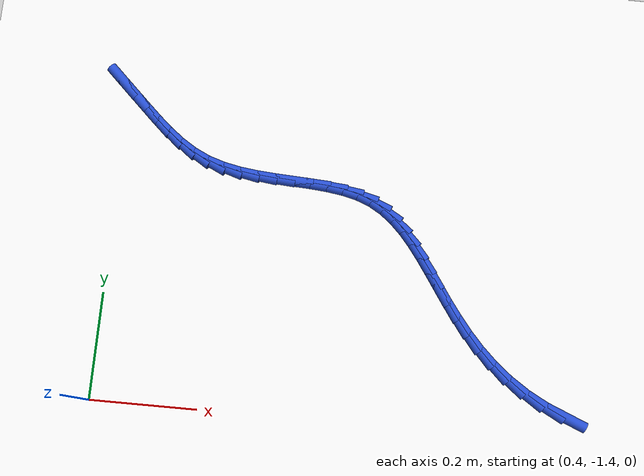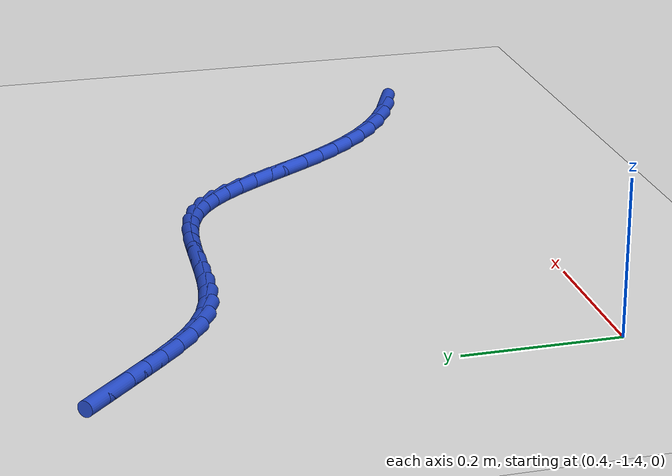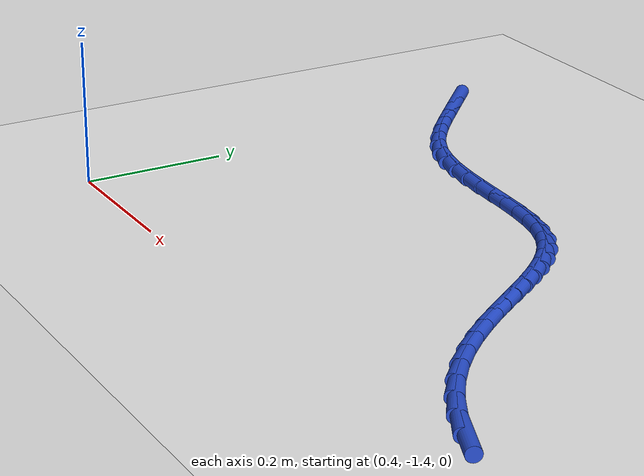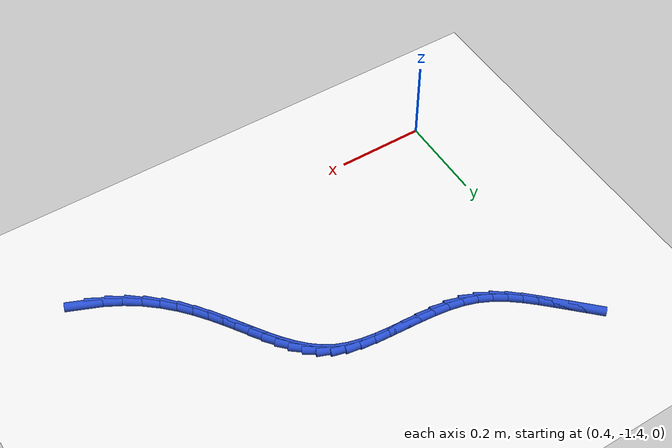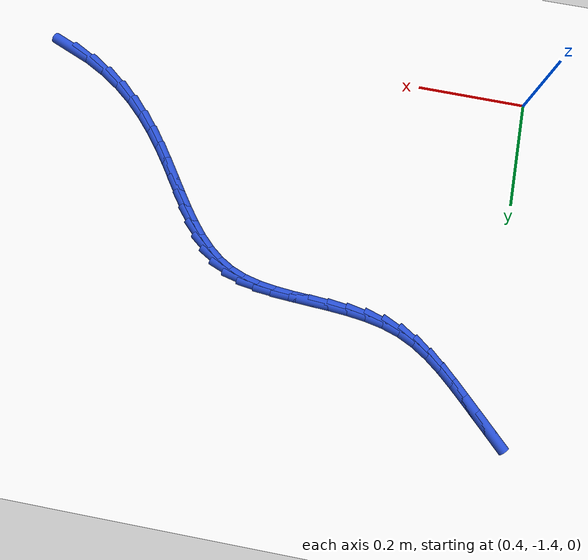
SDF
<sdf version="1.6">
 <world name="default">
  <model name="ground_plane">
   <static>1</static>
   <link name="link">
    <collision name="collision">
     <geometry><plane><normal>0 0 1</normal><size>100 100</size></plane></geometry>
     <surface><friction><ode><mu>100</mu><mu2>50</mu2></ode></friction></surface>
    </collision>
    <visual name="visual">
     <cast_shadows>0</cast_shadows>
     <geometry><plane><normal>0 0 1</normal><size>100 100</size></plane></geometry>
     <material>
      <script><uri>file://media/materials/scripts/gazebo.material</uri><name>Gazebo/WhiteGlow</name></script>
     </material>
    </visual>
   </link>
  </model>
  <model name="line">
   <link name="link_209">
    <pose>1.2712890341023373 -1.3537588794296445 0.01 0 1.57 -0.3932821039476842</pose>
    <collision name="collision">
     <geometry><cylinder><radius>0.01</radius><length>0.08</length></cylinder></geometry>
    </collision>
    <visual name="visual">
     <material>
      <script><name>Gazebo/Blue</name><uri>file://media/materials/scripts/gazebo.material</uri></script>
     </material>
     <geometry><cylinder><radius>0.01</radius><length>0.08</length></cylinder></geometry>
    </visual>
   </link>
   <link name="link_210">
    <pose>1.233628765594586 -1.338133755273114 0.01 0 1.57 -0.49834361054359916</pose>
    <collision name="collision">
     <geometry><cylinder><radius>0.01</radius><length>0.08</length></cylinder></geometry>
    </collision>
    <visual name="visual">
     <material>
      <script><name>Gazebo/Blue</name><uri>file://media/materials/scripts/gazebo.material</uri></script>
     </material>
     <geometry><cylinder><radius>0.01</radius><length>0.08</length></cylinder></geometry>
    </visual>
   </link>
   <link name="link_211">
    <pose>1.1966560040364618 -1.3180148902959616 0.01 0 1.57 -0.5964309809882797</pose>
    <collision name="collision">
     <geometry><cylinder><radius>0.01</radius><length>0.08</length></cylinder></geometry>
    </collision>
    <visual name="visual">
     <material>
      <script><name>Gazebo/Blue</name><uri>file://media/materials/scripts/gazebo.material</uri></script>
     </material>
     <geometry><cylinder><radius>0.01</radius><length>0.08</length></cylinder></geometry>
    </visual>
   </link>
   <link name="link_212">
    <pose>1.1631758418189233 -1.2952848708786582 0.01 0 1.57 -0.6905259404128921</pose>
    <collision name="collision">
     <geometry><cylinder><radius>0.01</radius><length>0.08</length></cylinder></geometry>
    </collision>
    <visual name="visual">
     <material>
      <script><name>Gazebo/Blue</name><uri>file://media/materials/scripts/gazebo.material</uri></script>
     </material>
     <geometry><cylinder><radius>0.01</radius><length>0.08</length></cylinder></geometry>
    </visual>
   </link>
   <link name="link_213">
    <pose>1.1333903971800678 -1.2706755202670923 0.01 0 1.57 -0.7755477362374128</pose>
    <collision name="collision">
     <geometry><cylinder><radius>0.01</radius><length>0.08</length></cylinder></geometry>
    </collision>
    <visual name="visual">
     <material>
      <script><name>Gazebo/Blue</name><uri>file://media/materials/scripts/gazebo.material</uri></script>
     </material>
     <geometry><cylinder><radius>0.01</radius><length>0.08</length></cylinder></geometry>
    </visual>
   </link>
   <link name="link_214">
    <pose>1.1068083968851032 -1.244612116463913 0.01 0 1.57 -0.8485444519125177</pose>
    <collision name="collision">
     <geometry><cylinder><radius>0.01</radius><length>0.08</length></cylinder></geometry>
    </collision>
    <visual name="visual">
     <material>
      <script><name>Gazebo/Blue</name><uri>file://media/materials/scripts/gazebo.material</uri></script>
     </material>
     <geometry><cylinder><radius>0.01</radius><length>0.08</length></cylinder></geometry>
    </visual>
   </link>
   <link name="link_215">
    <pose>1.0829385615203637 -1.2175199347401167 0.01 0 1.57 -0.9073311347463928</pose>
    <collision name="collision">
     <geometry><cylinder><radius>0.01</radius><length>0.08</length></cylinder></geometry>
    </collision>
    <visual name="visual">
     <material>
      <script><name>Gazebo/Blue</name><uri>file://media/materials/scripts/gazebo.material</uri></script>
     </material>
     <geometry><cylinder><radius>0.01</radius><length>0.08</length></cylinder></geometry>
    </visual>
   </link>
   <link name="link_216">
    <pose>1.0612896116721846 -1.1898242503666994 0.01 0 1.57 -0.9503234125625897</pose>
    <collision name="collision">
     <geometry><cylinder><radius>0.01</radius><length>0.08</length></cylinder></geometry>
    </collision>
    <visual name="visual">
     <material>
      <script><name>Gazebo/Blue</name><uri>file://media/materials/scripts/gazebo.material</uri></script>
     </material>
     <geometry><cylinder><radius>0.01</radius><length>0.08</length></cylinder></geometry>
    </visual>
   </link>
   <link name="link_217">
    <pose>1.0413702679269028 -1.1619503386146606 0.01 0 1.57 -0.9762293946090665</pose>
    <collision name="collision">
     <geometry><cylinder><radius>0.01</radius><length>0.08</length></cylinder></geometry>
    </collision>
    <visual name="visual">
     <material>
      <script><name>Gazebo/Blue</name><uri>file://media/materials/scripts/gazebo.material</uri></script>
     </material>
     <geometry><cylinder><radius>0.01</radius><length>0.08</length></cylinder></geometry>
    </visual>
   </link>
   <link name="link_218">
    <pose>1.0226892508708525 -1.1343234747549953 0.01 0 1.57 -0.9837118298803118</pose>
    <collision name="collision">
     <geometry><cylinder><radius>0.01</radius><length>0.08</length></cylinder></geometry>
    </collision>
    <visual name="visual">
     <material>
      <script><name>Gazebo/Blue</name><uri>file://media/materials/scripts/gazebo.material</uri></script>
     </material>
     <geometry><cylinder><radius>0.01</radius><length>0.08</length></cylinder></geometry>
    </visual>
   </link>
   <link name="link_219">
    <pose>1.0047552810903715 -1.107368934058703 0.01 0 1.57 -0.9710989264022156</pose>
    <collision name="collision">
     <geometry><cylinder><radius>0.01</radius><length>0.08</length></cylinder></geometry>
    </collision>
    <visual name="visual">
     <material>
      <script><name>Gazebo/Blue</name><uri>file://media/materials/scripts/gazebo.material</uri></script>
     </material>
     <geometry><cylinder><radius>0.01</radius><length>0.08</length></cylinder></geometry>
    </visual>
   </link>
   <link name="link_220">
    <pose>0.9870770791717933 -1.0815119917967788 0.01 0 1.57 -0.9362132688719885</pose>
    <collision name="collision">
     <geometry><cylinder><radius>0.01</radius><length>0.08</length></cylinder></geometry>
    </collision>
    <visual name="visual">
     <material>
      <script><name>Gazebo/Blue</name><uri>file://media/materials/scripts/gazebo.material</uri></script>
     </material>
     <geometry><cylinder><radius>0.01</radius><length>0.08</length></cylinder></geometry>
    </visual>
   </link>
   <link name="link_221">
    <pose>0.9691633657014552 -1.057177923240222 0.01 0 1.57 -0.8764385535347579</pose>
    <collision name="collision">
     <geometry><cylinder><radius>0.01</radius><length>0.08</length></cylinder></geometry>
    </collision>
    <visual name="visual">
     <material>
      <script><name>Gazebo/Blue</name><uri>file://media/materials/scripts/gazebo.material</uri></script>
     </material>
     <geometry><cylinder><radius>0.01</radius><length>0.08</length></cylinder></geometry>
    </visual>
   </link>
   <link name="link_222">
    <pose>0.9505228612656922 -1.0347920036600284 0.01 0 1.57 -0.7892586003705578</pose>
    <collision name="collision">
     <geometry><cylinder><radius>0.01</radius><length>0.08</length></cylinder></geometry>
    </collision>
    <visual name="visual">
     <material>
      <script><name>Gazebo/Blue</name><uri>file://media/materials/scripts/gazebo.material</uri></script>
     </material>
     <geometry><cylinder><radius>0.01</radius><length>0.08</length></cylinder></geometry>
    </visual>
   </link>
   <link name="link_223">
    <pose>0.9306642864508405 -1.014779508327196 0.01 0 1.57 -0.6735936574031657</pose>
    <collision name="collision">
     <geometry><cylinder><radius>0.01</radius><length>0.08</length></cylinder></geometry>
    </collision>
    <visual name="visual">
     <material>
      <script><name>Gazebo/Blue</name><uri>file://media/materials/scripts/gazebo.material</uri></script>
     </material>
     <geometry><cylinder><radius>0.01</radius><length>0.08</length></cylinder></geometry>
    </visual>
   </link>
   <link name="link_224">
    <pose>0.9090963618432351 -0.9975657125127213 0.01 0 1.57 -0.531984046560885</pose>
    <collision name="collision">
     <geometry><cylinder><radius>0.01</radius><length>0.08</length></cylinder></geometry>
    </collision>
    <visual name="visual">
     <material>
      <script><name>Gazebo/Blue</name><uri>file://media/materials/scripts/gazebo.material</uri></script>
     </material>
     <geometry><cylinder><radius>0.01</radius><length>0.08</length></cylinder></geometry>
    </visual>
   </link>
   <link name="link_225">
    <pose>0.8853278080292126 -0.9835758914876026 0.01 0 1.57 -0.3743671392875668</pose>
    <collision name="collision">
     <geometry><cylinder><radius>0.01</radius><length>0.08</length></cylinder></geometry>
    </collision>
    <visual name="visual">
     <material>
      <script><name>Gazebo/Blue</name><uri>file://media/materials/scripts/gazebo.material</uri></script>
     </material>
     <geometry><cylinder><radius>0.01</radius><length>0.08</length></cylinder></geometry>
    </visual>
   </link>
   <link name="link_226">
    <pose>0.858901594300887 -0.9731931420330416 0.01 0 1.57 -0.2386428527274128</pose>
    <collision name="collision">
     <geometry><cylinder><radius>0.01</radius><length>0.08</length></cylinder></geometry>
    </collision>
    <visual name="visual">
     <material>
      <script><name>Gazebo/Blue</name><uri>file://media/materials/scripts/gazebo.material</uri></script>
     </material>
     <geometry><cylinder><radius>0.01</radius><length>0.08</length></cylinder></geometry>
    </visual>
   </link>
   <link name="link_227">
    <pose>0.8298991262425047 -0.9661374576351933 0.01 0 1.57 -0.14497136874915995</pose>
    <collision name="collision">
     <geometry><cylinder><radius>0.01</radius><length>0.08</length></cylinder></geometry>
    </collision>
    <visual name="visual">
     <material>
      <script><name>Gazebo/Blue</name><uri>file://media/materials/scripts/gazebo.material</uri></script>
     </material>
     <geometry><cylinder><radius>0.01</radius><length>0.08</length></cylinder></geometry>
    </visual>
   </link>
   <link name="link_228">
    <pose>0.7988299983020699 -0.9616015020838168 0.01 0 1.57 -0.0868024873980235</pose>
    <collision name="collision">
     <geometry><cylinder><radius>0.01</radius><length>0.08</length></cylinder></geometry>
    </collision>
    <visual name="visual">
     <material>
      <script><name>Gazebo/Blue</name><uri>file://media/materials/scripts/gazebo.material</uri></script>
     </material>
     <geometry><cylinder><radius>0.01</radius><length>0.08</length></cylinder></geometry>
    </visual>
   </link>
   <link name="link_229">
    <pose>0.7662156407077375 -0.9587633629877299 0.01 0 1.57 -0.05826757571302998</pose>
    <collision name="collision">
     <geometry><cylinder><radius>0.01</radius><length>0.08</length></cylinder></geometry>
    </collision>
    <visual name="visual">
     <material>
      <script><name>Gazebo/Blue</name><uri>file://media/materials/scripts/gazebo.material</uri></script>
     </material>
     <geometry><cylinder><radius>0.01</radius><length>0.08</length></cylinder></geometry>
    </visual>
   </link>
   <link name="link_230">
    <pose>0.7325774836876653 -0.9568011279557512 0.01 0 1.57 -0.055835691359183176</pose>
    <collision name="collision">
     <geometry><cylinder><radius>0.01</radius><length>0.08</length></cylinder></geometry>
    </collision>
    <visual name="visual">
     <material>
      <script><name>Gazebo/Blue</name><uri>file://media/materials/scripts/gazebo.material</uri></script>
     </material>
     <geometry><cylinder><radius>0.01</radius><length>0.08</length></cylinder></geometry>
    </visual>
   </link>
   <link name="link_231">
    <pose>0.6984369574700081 -0.9548928845966989 0.01 0 1.57 -0.07827028792766427</pose>
    <collision name="collision">
     <geometry><cylinder><radius>0.01</radius><length>0.08</length></cylinder></geometry>
    </collision>
    <visual name="visual">
     <material>
      <script><name>Gazebo/Blue</name><uri>file://media/materials/scripts/gazebo.material</uri></script>
     </material>
     <geometry><cylinder><radius>0.01</radius><length>0.08</length></cylinder></geometry>
    </visual>
   </link>
   <link name="link_232">
    <pose>0.6643154922829239 -0.9522167205193909 0.01 0 1.57 -0.12635930087333394</pose>
    <collision name="collision">
     <geometry><cylinder><radius>0.01</radius><length>0.08</length></cylinder></geometry>
    </collision>
    <visual name="visual">
     <material>
      <script><name>Gazebo/Blue</name><uri>file://media/materials/scripts/gazebo.material</uri></script>
     </material>
     <geometry><cylinder><radius>0.01</radius><length>0.08</length></cylinder></geometry>
    </visual>
   </link>
   <link name="link_233">
    <pose>0.630734518354567 -0.9479507233326451 0.01 0 1.57 -0.20253313831016825</pose>
    <collision name="collision">
     <geometry><cylinder><radius>0.01</radius><length>0.08</length></cylinder></geometry>
    </collision>
    <visual name="visual">
     <material>
      <script><name>Gazebo/Blue</name><uri>file://media/materials/scripts/gazebo.material</uri></script>
     </material>
     <geometry><cylinder><radius>0.01</radius><length>0.08</length></cylinder></geometry>
    </visual>
   </link>
   <link name="link_234">
    <pose>0.5982154659130958 -0.9412729806452803 0.01 0 1.57 -0.31005408136774865</pose>
    <collision name="collision">
     <geometry><cylinder><radius>0.01</radius><length>0.08</length></cylinder></geometry>
    </collision>
    <visual name="visual">
     <material>
      <script><name>Gazebo/Blue</name><uri>file://media/materials/scripts/gazebo.material</uri></script>
     </material>
     <geometry><cylinder><radius>0.01</radius><length>0.08</length></cylinder></geometry>
    </visual>
   </link>
   <link name="link_235">
    <pose>0.5672797651866655 -0.9313615800661144 0.01 0 1.57 -0.445323536437308</pose>
    <collision name="collision">
     <geometry><cylinder><radius>0.01</radius><length>0.08</length></cylinder></geometry>
    </collision>
    <visual name="visual">
     <material>
      <script><name>Gazebo/Blue</name><uri>file://media/materials/scripts/gazebo.material</uri></script>
     </material>
     <geometry><cylinder><radius>0.01</radius><length>0.08</length></cylinder></geometry>
    </visual>
   </link>
   <link name="link_236">
    <pose>0.5383563753245079 -0.9175564361445169 0.01 0 1.57 -0.568278397028626</pose>
    <collision name="collision">
     <geometry><cylinder><radius>0.01</radius><length>0.08</length></cylinder></geometry>
    </collision>
    <visual name="visual">
     <material>
      <script><name>Gazebo/Blue</name><uri>file://media/materials/scripts/gazebo.material</uri></script>
     </material>
     <geometry><cylinder><radius>0.01</radius><length>0.08</length></cylinder></geometry>
    </visual>
   </link>
   <link name="link_237">
    <pose>0.5112676085957107 -0.9002591122150997 0.01 0 1.57 -0.6607890291041479</pose>
    <collision name="collision">
     <geometry><cylinder><radius>0.01</radius><length>0.08</length></cylinder></geometry>
    </collision>
    <visual name="visual">
     <material>
      <script><name>Gazebo/Blue</name><uri>file://media/materials/scripts/gazebo.material</uri></script>
     </material>
     <geometry><cylinder><radius>0.01</radius><length>0.08</length></cylinder></geometry>
    </visual>
   </link>
   <link name="link_238">
    <pose>0.48559125760879435 -0.8802990877678195 0.01 0 1.57 -0.7231974785594837</pose>
    <collision name="collision">
     <geometry><cylinder><radius>0.01</radius><length>0.08</length></cylinder></geometry>
    </collision>
    <visual name="visual">
     <material>
      <script><name>Gazebo/Blue</name><uri>file://media/materials/scripts/gazebo.material</uri></script>
     </material>
     <geometry><cylinder><radius>0.01</radius><length>0.08</length></cylinder></geometry>
    </visual>
   </link>
   <link name="link_239">
    <pose>0.4609044403269885 -0.8585070229405218 0.01 0 1.57 -0.7571256214405679</pose>
    <collision name="collision">
     <geometry><cylinder><radius>0.01</radius><length>0.08</length></cylinder></geometry>
    </collision>
    <visual name="visual">
     <material>
      <script><name>Gazebo/Blue</name><uri>file://media/materials/scripts/gazebo.material</uri></script>
     </material>
     <geometry><cylinder><radius>0.01</radius><length>0.08</length></cylinder></geometry>
    </visual>
   </link>
   <link name="link_240">
    <pose>0.4367842747135194 -0.8357135778710496 0.01 0 1.57 -0.7655673681837228</pose>
    <collision name="collision">
     <geometry><cylinder><radius>0.01</radius><length>0.08</length></cylinder></geometry>
    </collision>
    <visual name="visual">
     <material>
      <script><name>Gazebo/Blue</name><uri>file://media/materials/scripts/gazebo.material</uri></script>
     </material>
     <geometry><cylinder><radius>0.01</radius><length>0.08</length></cylinder></geometry>
    </visual>
   </link>
   <link name="link_241">
    <pose>0.41283675211209286 -0.8126975028600718 0.01 0 1.57 -0.7663994864224432</pose>
    <collision name="collision">
     <geometry><cylinder><radius>0.01</radius><length>0.08</length></cylinder></geometry>
    </collision>
    <visual name="visual">
     <material>
      <script><name>Gazebo/Blue</name><uri>file://media/materials/scripts/gazebo.material</uri></script>
     </material>
     <geometry><cylinder><radius>0.01</radius><length>0.08</length></cylinder></geometry>
    </visual>
   </link>
   <link name="link_242">
    <pose>0.3889604125761138 -0.7897115912320931 0.01 0 1.57 -0.7698313187566974</pose>
    <collision name="collision">
     <geometry><cylinder><radius>0.01</radius><length>0.08</length></cylinder></geometry>
    </collision>
    <visual name="visual">
     <material>
      <script><name>Gazebo/Blue</name><uri>file://media/materials/scripts/gazebo.material</uri></script>
     </material>
     <geometry><cylinder><radius>0.01</radius><length>0.08</length></cylinder></geometry>
    </visual>
   </link>
  </model>
 </world>
</sdf>
